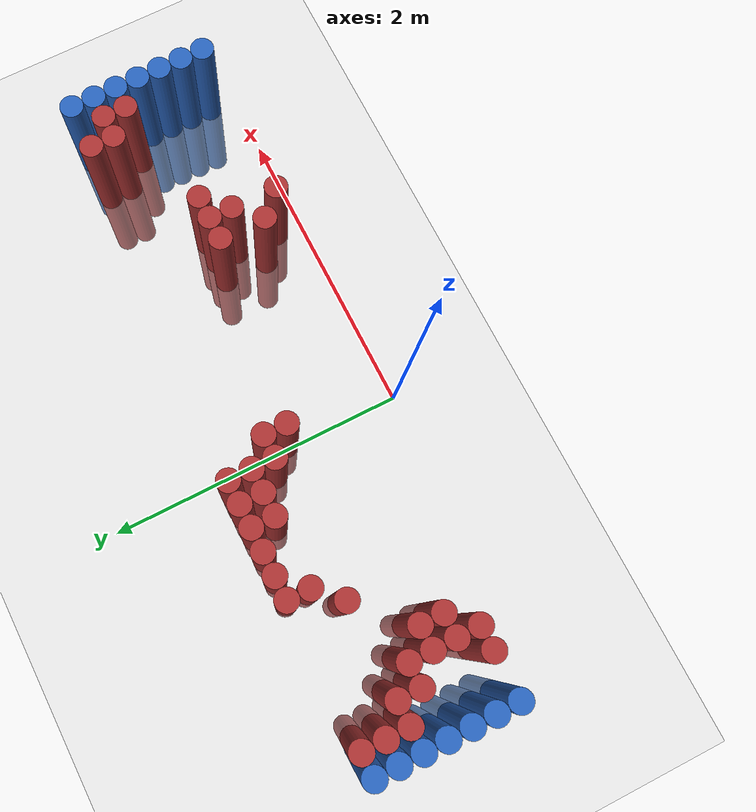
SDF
<sdf version="1.6">
 <world name="default">
  <model name="ground_plane">
   <static>1</static>
   <link name="link">
    <collision name="collision">
     <geometry><plane><normal>0 0 1</normal><size>100 100</size></plane></geometry>
     <surface><friction><ode><mu>100</mu><mu2>50</mu2></ode></friction></surface>
    </collision>
    <visual name="visual">
     <cast_shadows>0</cast_shadows>
     <geometry><plane><normal>0 0 1</normal><size>100 100</size></plane></geometry>
     <material>
      <script><uri>file://media/materials/scripts/gazebo.material</uri><name>Gazebo/Grey</name></script>
     </material>
    </visual>
   </link>
  </model>
  <model name="unit_cylinder_97">
   <static>1</static>
   <pose>-1.925000 0.325000 0.000000 0.000000 0.000000 0.000000</pose>
   <link name="link">
    <inertial>
     <mass>1</mass>
     <inertia><ixx>0.145833</ixx><ixy>0</ixy><ixz>0</ixz><iyy>0.145833</iyy><iyz>0</iyz><izz>0.125</izz></inertia>
    </inertial>
    <collision name="collision">
     <geometry><cylinder><radius>0.075000</radius><length>1.5</length></cylinder></geometry>
    </collision>
    <visual name="visual">
     <geometry><cylinder><radius>0.075000</radius><length>1.5</length></cylinder></geometry>
     <material>
      <ambient>0.152000 0.379000 0.720000 1</ambient>
      <diffuse>0.152000 0.379000 0.720000 1</diffuse>
     </material>
     <material>
      <script><name>Gazebo/Grey</name><uri>file://media/materials/scripts/gazebo.material</uri></script>
     </material>
    </visual>
   </link>
  </model>
  <model name="unit_cylinder_98">
   <static>1</static>
   <pose>-1.925000 0.475000 0.000000 0.000000 0.000000 0.000000</pose>
   <link name="link">
    <inertial>
     <mass>1</mass>
     <inertia><ixx>0.145833</ixx><ixy>0</ixy><ixz>0</ixz><iyy>0.145833</iyy><iyz>0</iyz><izz>0.125</izz></inertia>
    </inertial>
    <collision name="collision">
     <geometry><cylinder><radius>0.075000</radius><length>1.5</length></cylinder></geometry>
    </collision>
    <visual name="visual">
     <geometry><cylinder><radius>0.075000</radius><length>1.5</length></cylinder></geometry>
     <material>
      <ambient>0.152000 0.379000 0.720000 1</ambient>
      <diffuse>0.152000 0.379000 0.720000 1</diffuse>
     </material>
     <material>
      <script><name>Gazebo/Grey</name><uri>file://media/materials/scripts/gazebo.material</uri></script>
     </material>
    </visual>
   </link>
  </model>
  <model name="unit_cylinder_99">
   <static>1</static>
   <pose>-1.925000 0.625000 0.000000 0.000000 0.000000 0.000000</pose>
   <link name="link">
    <inertial>
     <mass>1</mass>
     <inertia><ixx>0.145833</ixx><ixy>0</ixy><ixz>0</ixz><iyy>0.145833</iyy><iyz>0</iyz><izz>0.125</izz></inertia>
    </inertial>
    <collision name="collision">
     <geometry><cylinder><radius>0.075000</radius><length>1.5</length></cylinder></geometry>
    </collision>
    <visual name="visual">
     <geometry><cylinder><radius>0.075000</radius><length>1.5</length></cylinder></geometry>
     <material>
      <ambient>0.152000 0.379000 0.720000 1</ambient>
      <diffuse>0.152000 0.379000 0.720000 1</diffuse>
     </material>
     <material>
      <script><name>Gazebo/Grey</name><uri>file://media/materials/scripts/gazebo.material</uri></script>
     </material>
    </visual>
   </link>
  </model>
  <model name="unit_cylinder_100">
   <static>1</static>
   <pose>-1.925000 0.775000 0.000000 0.000000 0.000000 0.000000</pose>
   <link name="link">
    <inertial>
     <mass>1</mass>
     <inertia><ixx>0.145833</ixx><ixy>0</ixy><ixz>0</ixz><iyy>0.145833</iyy><iyz>0</iyz><izz>0.125</izz></inertia>
    </inertial>
    <collision name="collision">
     <geometry><cylinder><radius>0.075000</radius><length>1.5</length></cylinder></geometry>
    </collision>
    <visual name="visual">
     <geometry><cylinder><radius>0.075000</radius><length>1.5</length></cylinder></geometry>
     <material>
      <ambient>0.152000 0.379000 0.720000 1</ambient>
      <diffuse>0.152000 0.379000 0.720000 1</diffuse>
     </material>
     <material>
      <script><name>Gazebo/Grey</name><uri>file://media/materials/scripts/gazebo.material</uri></script>
     </material>
    </visual>
   </link>
  </model>
  <model name="unit_cylinder_101">
   <static>1</static>
   <pose>-1.925000 0.925000 0.000000 0.000000 0.000000 0.000000</pose>
   <link name="link">
    <inertial>
     <mass>1</mass>
     <inertia><ixx>0.145833</ixx><ixy>0</ixy><ixz>0</ixz><iyy>0.145833</iyy><iyz>0</iyz><izz>0.125</izz></inertia>
    </inertial>
    <collision name="collision">
     <geometry><cylinder><radius>0.075000</radius><length>1.5</length></cylinder></geometry>
    </collision>
    <visual name="visual">
     <geometry><cylinder><radius>0.075000</radius><length>1.5</length></cylinder></geometry>
     <material>
      <ambient>0.152000 0.379000 0.720000 1</ambient>
      <diffuse>0.152000 0.379000 0.720000 1</diffuse>
     </material>
     <material>
      <script><name>Gazebo/Grey</name><uri>file://media/materials/scripts/gazebo.material</uri></script>
     </material>
    </visual>
   </link>
  </model>
  <model name="unit_cylinder_102">
   <static>1</static>
   <pose>-1.925000 1.075000 0.000000 0.000000 0.000000 0.000000</pose>
   <link name="link">
    <inertial>
     <mass>1</mass>
     <inertia><ixx>0.145833</ixx><ixy>0</ixy><ixz>0</ixz><iyy>0.145833</iyy><iyz>0</iyz><izz>0.125</izz></inertia>
    </inertial>
    <collision name="collision">
     <geometry><cylinder><radius>0.075000</radius><length>1.5</length></cylinder></geometry>
    </collision>
    <visual name="visual">
     <geometry><cylinder><radius>0.075000</radius><length>1.5</length></cylinder></geometry>
     <material>
      <ambient>0.152000 0.379000 0.720000 1</ambient>
      <diffuse>0.152000 0.379000 0.720000 1</diffuse>
     </material>
     <material>
      <script><name>Gazebo/Grey</name><uri>file://media/materials/scripts/gazebo.material</uri></script>
     </material>
    </visual>
   </link>
  </model>
  <model name="unit_cylinder_103">
   <static>1</static>
   <pose>-1.925000 1.225000 0.000000 0.000000 0.000000 0.000000</pose>
   <link name="link">
    <inertial>
     <mass>1</mass>
     <inertia><ixx>0.145833</ixx><ixy>0</ixy><ixz>0</ixz><iyy>0.145833</iyy><iyz>0</iyz><izz>0.125</izz></inertia>
    </inertial>
    <collision name="collision">
     <geometry><cylinder><radius>0.075000</radius><length>1.5</length></cylinder></geometry>
    </collision>
    <visual name="visual">
     <geometry><cylinder><radius>0.075000</radius><length>1.5</length></cylinder></geometry>
     <material>
      <ambient>0.152000 0.379000 0.720000 1</ambient>
      <diffuse>0.152000 0.379000 0.720000 1</diffuse>
     </material>
     <material>
      <script><name>Gazebo/Grey</name><uri>file://media/materials/scripts/gazebo.material</uri></script>
     </material>
    </visual>
   </link>
  </model>
  <model name="unit_cylinder_127">
   <static>1</static>
   <pose>-1.775000 0.925000 0.000000 0.000000 0.000000 0.000000</pose>
   <link name="link">
    <inertial>
     <mass>1</mass>
     <inertia><ixx>0.145833</ixx><ixy>0</ixy><ixz>0</ixz><iyy>0.145833</iyy><iyz>0</iyz><izz>0.125</izz></inertia>
    </inertial>
    <collision name="collision">
     <geometry><cylinder><radius>0.075000</radius><length>1.5</length></cylinder></geometry>
    </collision>
    <visual name="visual">
     <geometry><cylinder><radius>0.075000</radius><length>1.5</length></cylinder></geometry>
     <material>
      <ambient>0.648000 0.192000 0.192000 1</ambient>
      <diffuse>0.648000 0.192000 0.192000 1</diffuse>
     </material>
     <material>
      <script><name>Gazebo/Grey</name><uri>file://media/materials/scripts/gazebo.material</uri></script>
     </material>
    </visual>
   </link>
  </model>
  <model name="unit_cylinder_128">
   <static>1</static>
   <pose>-1.775000 1.075000 0.000000 0.000000 0.000000 0.000000</pose>
   <link name="link">
    <inertial>
     <mass>1</mass>
     <inertia><ixx>0.145833</ixx><ixy>0</ixy><ixz>0</ixz><iyy>0.145833</iyy><iyz>0</iyz><izz>0.125</izz></inertia>
    </inertial>
    <collision name="collision">
     <geometry><cylinder><radius>0.075000</radius><length>1.5</length></cylinder></geometry>
    </collision>
    <visual name="visual">
     <geometry><cylinder><radius>0.075000</radius><length>1.5</length></cylinder></geometry>
     <material>
      <ambient>0.648000 0.192000 0.192000 1</ambient>
      <diffuse>0.648000 0.192000 0.192000 1</diffuse>
     </material>
     <material>
      <script><name>Gazebo/Grey</name><uri>file://media/materials/scripts/gazebo.material</uri></script>
     </material>
    </visual>
   </link>
  </model>
  <model name="unit_cylinder_129">
   <static>1</static>
   <pose>-1.775000 1.225000 0.000000 0.000000 0.000000 0.000000</pose>
   <link name="link">
    <inertial>
     <mass>1</mass>
     <inertia><ixx>0.145833</ixx><ixy>0</ixy><ixz>0</ixz><iyy>0.145833</iyy><iyz>0</iyz><izz>0.125</izz></inertia>
    </inertial>
    <collision name="collision">
     <geometry><cylinder><radius>0.075000</radius><length>1.5</length></cylinder></geometry>
    </collision>
    <visual name="visual">
     <geometry><cylinder><radius>0.075000</radius><length>1.5</length></cylinder></geometry>
     <material>
      <ambient>0.648000 0.192000 0.192000 1</ambient>
      <diffuse>0.648000 0.192000 0.192000 1</diffuse>
     </material>
     <material>
      <script><name>Gazebo/Grey</name><uri>file://media/materials/scripts/gazebo.material</uri></script>
     </material>
    </visual>
   </link>
  </model>
  <model name="unit_cylinder_150">
   <static>1</static>
   <pose>-1.625000 0.325000 0.000000 0.000000 0.000000 0.000000</pose>
   <link name="link">
    <inertial>
     <mass>1</mass>
     <inertia><ixx>0.145833</ixx><ixy>0</ixy><ixz>0</ixz><iyy>0.145833</iyy><iyz>0</iyz><izz>0.125</izz></inertia>
    </inertial>
    <collision name="collision">
     <geometry><cylinder><radius>0.075000</radius><length>1.5</length></cylinder></geometry>
    </collision>
    <visual name="visual">
     <geometry><cylinder><radius>0.075000</radius><length>1.5</length></cylinder></geometry>
     <material>
      <ambient>0.648000 0.192000 0.192000 1</ambient>
      <diffuse>0.648000 0.192000 0.192000 1</diffuse>
     </material>
     <material>
      <script><name>Gazebo/Grey</name><uri>file://media/materials/scripts/gazebo.material</uri></script>
     </material>
    </visual>
   </link>
  </model>
  <model name="unit_cylinder_151">
   <static>1</static>
   <pose>-1.625000 0.775000 0.000000 0.000000 0.000000 0.000000</pose>
   <link name="link">
    <inertial>
     <mass>1</mass>
     <inertia><ixx>0.145833</ixx><ixy>0</ixy><ixz>0</ixz><iyy>0.145833</iyy><iyz>0</iyz><izz>0.125</izz></inertia>
    </inertial>
    <collision name="collision">
     <geometry><cylinder><radius>0.075000</radius><length>1.5</length></cylinder></geometry>
    </collision>
    <visual name="visual">
     <geometry><cylinder><radius>0.075000</radius><length>1.5</length></cylinder></geometry>
     <material>
      <ambient>0.648000 0.192000 0.192000 1</ambient>
      <diffuse>0.648000 0.192000 0.192000 1</diffuse>
     </material>
     <material>
      <script><name>Gazebo/Grey</name><uri>file://media/materials/scripts/gazebo.material</uri></script>
     </material>
    </visual>
   </link>
  </model>
  <model name="unit_cylinder_152">
   <static>1</static>
   <pose>-1.625000 0.925000 0.000000 0.000000 0.000000 0.000000</pose>
   <link name="link">
    <inertial>
     <mass>1</mass>
     <inertia><ixx>0.145833</ixx><ixy>0</ixy><ixz>0</ixz><iyy>0.145833</iyy><iyz>0</iyz><izz>0.125</izz></inertia>
    </inertial>
    <collision name="collision">
     <geometry><cylinder><radius>0.075000</radius><length>1.5</length></cylinder></geometry>
    </collision>
    <visual name="visual">
     <geometry><cylinder><radius>0.075000</radius><length>1.5</length></cylinder></geometry>
     <material>
      <ambient>0.648000 0.192000 0.192000 1</ambient>
      <diffuse>0.648000 0.192000 0.192000 1</diffuse>
     </material>
     <material>
      <script><name>Gazebo/Grey</name><uri>file://media/materials/scripts/gazebo.material</uri></script>
     </material>
    </visual>
   </link>
  </model>
  <model name="unit_cylinder_156">
   <static>1</static>
   <pose>-1.475000 0.325000 0.000000 0.000000 0.000000 0.000000</pose>
   <link name="link">
    <inertial>
     <mass>1</mass>
     <inertia><ixx>0.145833</ixx><ixy>0</ixy><ixz>0</ixz><iyy>0.145833</iyy><iyz>0</iyz><izz>0.125</izz></inertia>
    </inertial>
    <collision name="collision">
     <geometry><cylinder><radius>0.075000</radius><length>1.5</length></cylinder></geometry>
    </collision>
    <visual name="visual">
     <geometry><cylinder><radius>0.075000</radius><length>1.5</length></cylinder></geometry>
     <material>
      <ambient>0.648000 0.192000 0.192000 1</ambient>
      <diffuse>0.648000 0.192000 0.192000 1</diffuse>
     </material>
     <material>
      <script><name>Gazebo/Grey</name><uri>file://media/materials/scripts/gazebo.material</uri></script>
     </material>
    </visual>
   </link>
  </model>
  <model name="unit_cylinder_157">
   <static>1</static>
   <pose>-1.475000 0.475000 0.000000 0.000000 0.000000 0.000000</pose>
   <link name="link">
    <inertial>
     <mass>1</mass>
     <inertia><ixx>0.145833</ixx><ixy>0</ixy><ixz>0</ixz><iyy>0.145833</iyy><iyz>0</iyz><izz>0.125</izz></inertia>
    </inertial>
    <collision name="collision">
     <geometry><cylinder><radius>0.075000</radius><length>1.5</length></cylinder></geometry>
    </collision>
    <visual name="visual">
     <geometry><cylinder><radius>0.075000</radius><length>1.5</length></cylinder></geometry>
     <material>
      <ambient>0.648000 0.192000 0.192000 1</ambient>
      <diffuse>0.648000 0.192000 0.192000 1</diffuse>
     </material>
     <material>
      <script><name>Gazebo/Grey</name><uri>file://media/materials/scripts/gazebo.material</uri></script>
     </material>
    </visual>
   </link>
  </model>
  <model name="unit_cylinder_158">
   <static>1</static>
   <pose>-1.475000 0.625000 0.000000 0.000000 0.000000 0.000000</pose>
   <link name="link">
    <inertial>
     <mass>1</mass>
     <inertia><ixx>0.145833</ixx><ixy>0</ixy><ixz>0</ixz><iyy>0.145833</iyy><iyz>0</iyz><izz>0.125</izz></inertia>
    </inertial>
    <collision name="collision">
     <geometry><cylinder><radius>0.075000</radius><length>1.5</length></cylinder></geometry>
    </collision>
    <visual name="visual">
     <geometry><cylinder><radius>0.075000</radius><length>1.5</length></cylinder></geometry>
     <material>
      <ambient>0.648000 0.192000 0.192000 1</ambient>
      <diffuse>0.648000 0.192000 0.192000 1</diffuse>
     </material>
     <material>
      <script><name>Gazebo/Grey</name><uri>file://media/materials/scripts/gazebo.material</uri></script>
     </material>
    </visual>
   </link>
  </model>
  <model name="unit_cylinder_159">
   <static>1</static>
   <pose>-1.475000 0.775000 0.000000 0.000000 0.000000 0.000000</pose>
   <link name="link">
    <inertial>
     <mass>1</mass>
     <inertia><ixx>0.145833</ixx><ixy>0</ixy><ixz>0</ixz><iyy>0.145833</iyy><iyz>0</iyz><izz>0.125</izz></inertia>
    </inertial>
    <collision name="collision">
     <geometry><cylinder><radius>0.075000</radius><length>1.5</length></cylinder></geometry>
    </collision>
    <visual name="visual">
     <geometry><cylinder><radius>0.075000</radius><length>1.5</length></cylinder></geometry>
     <material>
      <ambient>0.648000 0.192000 0.192000 1</ambient>
      <diffuse>0.648000 0.192000 0.192000 1</diffuse>
     </material>
     <material>
      <script><name>Gazebo/Grey</name><uri>file://media/materials/scripts/gazebo.material</uri></script>
     </material>
    </visual>
   </link>
  </model>
  <model name="unit_cylinder_162">
   <static>1</static>
   <pose>-1.325000 0.475000 0.000000 0.000000 0.000000 0.000000</pose>
   <link name="link">
    <inertial>
     <mass>1</mass>
     <inertia><ixx>0.145833</ixx><ixy>0</ixy><ixz>0</ixz><iyy>0.145833</iyy><iyz>0</iyz><izz>0.125</izz></inertia>
    </inertial>
    <collision name="collision">
     <geometry><cylinder><radius>0.075000</radius><length>1.5</length></cylinder></geometry>
    </collision>
    <visual name="visual">
     <geometry><cylinder><radius>0.075000</radius><length>1.5</length></cylinder></geometry>
     <material>
      <ambient>0.648000 0.192000 0.192000 1</ambient>
      <diffuse>0.648000 0.192000 0.192000 1</diffuse>
     </material>
     <material>
      <script><name>Gazebo/Grey</name><uri>file://media/materials/scripts/gazebo.material</uri></script>
     </material>
    </visual>
   </link>
  </model>
  <model name="unit_cylinder_163">
   <static>1</static>
   <pose>-1.325000 0.625000 0.000000 0.000000 0.000000 0.000000</pose>
   <link name="link">
    <inertial>
     <mass>1</mass>
     <inertia><ixx>0.145833</ixx><ixy>0</ixy><ixz>0</ixz><iyy>0.145833</iyy><iyz>0</iyz><izz>0.125</izz></inertia>
    </inertial>
    <collision name="collision">
     <geometry><cylinder><radius>0.075000</radius><length>1.5</length></cylinder></geometry>
    </collision>
    <visual name="visual">
     <geometry><cylinder><radius>0.075000</radius><length>1.5</length></cylinder></geometry>
     <material>
      <ambient>0.648000 0.192000 0.192000 1</ambient>
      <diffuse>0.648000 0.192000 0.192000 1</diffuse>
     </material>
     <material>
      <script><name>Gazebo/Grey</name><uri>file://media/materials/scripts/gazebo.material</uri></script>
     </material>
    </visual>
   </link>
  </model>
  <model name="unit_cylinder_179">
   <static>1</static>
   <pose>-1.025000 0.925000 0.000000 0.000000 0.000000 0.000000</pose>
   <link name="link">
    <inertial>
     <mass>1</mass>
     <inertia><ixx>0.145833</ixx><ixy>0</ixy><ixz>0</ixz><iyy>0.145833</iyy><iyz>0</iyz><izz>0.125</izz></inertia>
    </inertial>
    <collision name="collision">
     <geometry><cylinder><radius>0.075000</radius><length>1.5</length></cylinder></geometry>
    </collision>
    <visual name="visual">
     <geometry><cylinder><radius>0.075000</radius><length>1.5</length></cylinder></geometry>
     <material>
      <ambient>0.648000 0.192000 0.192000 1</ambient>
      <diffuse>0.648000 0.192000 0.192000 1</diffuse>
     </material>
     <material>
      <script><name>Gazebo/Grey</name><uri>file://media/materials/scripts/gazebo.material</uri></script>
     </material>
    </visual>
   </link>
  </model>
  <model name="unit_cylinder_181">
   <static>1</static>
   <pose>-0.875000 1.075000 0.000000 0.000000 0.000000 0.000000</pose>
   <link name="link">
    <inertial>
     <mass>1</mass>
     <inertia><ixx>0.145833</ixx><ixy>0</ixy><ixz>0</ixz><iyy>0.145833</iyy><iyz>0</iyz><izz>0.125</izz></inertia>
    </inertial>
    <collision name="collision">
     <geometry><cylinder><radius>0.075000</radius><length>1.5</length></cylinder></geometry>
    </collision>
    <visual name="visual">
     <geometry><cylinder><radius>0.075000</radius><length>1.5</length></cylinder></geometry>
     <material>
      <ambient>0.648000 0.192000 0.192000 1</ambient>
      <diffuse>0.648000 0.192000 0.192000 1</diffuse>
     </material>
     <material>
      <script><name>Gazebo/Grey</name><uri>file://media/materials/scripts/gazebo.material</uri></script>
     </material>
    </visual>
   </link>
  </model>
  <model name="unit_cylinder_182">
   <static>1</static>
   <pose>-0.875000 1.225000 0.000000 0.000000 0.000000 0.000000</pose>
   <link name="link">
    <inertial>
     <mass>1</mass>
     <inertia><ixx>0.145833</ixx><ixy>0</ixy><ixz>0</ixz><iyy>0.145833</iyy><iyz>0</iyz><izz>0.125</izz></inertia>
    </inertial>
    <collision name="collision">
     <geometry><cylinder><radius>0.075000</radius><length>1.5</length></cylinder></geometry>
    </collision>
    <visual name="visual">
     <geometry><cylinder><radius>0.075000</radius><length>1.5</length></cylinder></geometry>
     <material>
      <ambient>0.648000 0.192000 0.192000 1</ambient>
      <diffuse>0.648000 0.192000 0.192000 1</diffuse>
     </material>
     <material>
      <script><name>Gazebo/Grey</name><uri>file://media/materials/scripts/gazebo.material</uri></script>
     </material>
    </visual>
   </link>
  </model>
  <model name="unit_cylinder_183">
   <static>1</static>
   <pose>-0.725000 1.225000 0.000000 0.000000 0.000000 0.000000</pose>
   <link name="link">
    <inertial>
     <mass>1</mass>
     <inertia><ixx>0.145833</ixx><ixy>0</ixy><ixz>0</ixz><iyy>0.145833</iyy><iyz>0</iyz><izz>0.125</izz></inertia>
    </inertial>
    <collision name="collision">
     <geometry><cylinder><radius>0.075000</radius><length>1.5</length></cylinder></geometry>
    </collision>
    <visual name="visual">
     <geometry><cylinder><radius>0.075000</radius><length>1.5</length></cylinder></geometry>
     <material>
      <ambient>0.648000 0.192000 0.192000 1</ambient>
      <diffuse>0.648000 0.192000 0.192000 1</diffuse>
     </material>
     <material>
      <script><name>Gazebo/Grey</name><uri>file://media/materials/scripts/gazebo.material</uri></script>
     </material>
    </visual>
   </link>
  </model>
  <model name="unit_cylinder_185">
   <static>1</static>
   <pose>-0.575000 1.225000 0.000000 0.000000 0.000000 0.000000</pose>
   <link name="link">
    <inertial>
     <mass>1</mass>
     <inertia><ixx>0.145833</ixx><ixy>0</ixy><ixz>0</ixz><iyy>0.145833</iyy><iyz>0</iyz><izz>0.125</izz></inertia>
    </inertial>
    <collision name="collision">
     <geometry><cylinder><radius>0.075000</radius><length>1.5</length></cylinder></geometry>
    </collision>
    <visual name="visual">
     <geometry><cylinder><radius>0.075000</radius><length>1.5</length></cylinder></geometry>
     <material>
      <ambient>0.648000 0.192000 0.192000 1</ambient>
      <diffuse>0.648000 0.192000 0.192000 1</diffuse>
     </material>
     <material>
      <script><name>Gazebo/Grey</name><uri>file://media/materials/scripts/gazebo.material</uri></script>
     </material>
    </visual>
   </link>
  </model>
  <model name="unit_cylinder_192">
   <static>1</static>
   <pose>-0.425000 1.075000 0.000000 0.000000 0.000000 0.000000</pose>
   <link name="link">
    <inertial>
     <mass>1</mass>
     <inertia><ixx>0.145833</ixx><ixy>0</ixy><ixz>0</ixz><iyy>0.145833</iyy><iyz>0</iyz><izz>0.125</izz></inertia>
    </inertial>
    <collision name="collision">
     <geometry><cylinder><radius>0.075000</radius><length>1.5</length></cylinder></geometry>
    </collision>
    <visual name="visual">
     <geometry><cylinder><radius>0.075000</radius><length>1.5</length></cylinder></geometry>
     <material>
      <ambient>0.648000 0.192000 0.192000 1</ambient>
      <diffuse>0.648000 0.192000 0.192000 1</diffuse>
     </material>
     <material>
      <script><name>Gazebo/Grey</name><uri>file://media/materials/scripts/gazebo.material</uri></script>
     </material>
    </visual>
   </link>
  </model>
  <model name="unit_cylinder_193">
   <static>1</static>
   <pose>-0.425000 1.225000 0.000000 0.000000 0.000000 0.000000</pose>
   <link name="link">
    <inertial>
     <mass>1</mass>
     <inertia><ixx>0.145833</ixx><ixy>0</ixy><ixz>0</ixz><iyy>0.145833</iyy><iyz>0</iyz><izz>0.125</izz></inertia>
    </inertial>
    <collision name="collision">
     <geometry><cylinder><radius>0.075000</radius><length>1.5</length></cylinder></geometry>
    </collision>
    <visual name="visual">
     <geometry><cylinder><radius>0.075000</radius><length>1.5</length></cylinder></geometry>
     <material>
      <ambient>0.648000 0.192000 0.192000 1</ambient>
      <diffuse>0.648000 0.192000 0.192000 1</diffuse>
     </material>
     <material>
      <script><name>Gazebo/Grey</name><uri>file://media/materials/scripts/gazebo.material</uri></script>
     </material>
    </visual>
   </link>
  </model>
  <model name="unit_cylinder_202">
   <static>1</static>
   <pose>-0.275000 1.075000 0.000000 0.000000 0.000000 0.000000</pose>
   <link name="link">
    <inertial>
     <mass>1</mass>
     <inertia><ixx>0.145833</ixx><ixy>0</ixy><ixz>0</ixz><iyy>0.145833</iyy><iyz>0</iyz><izz>0.125</izz></inertia>
    </inertial>
    <collision name="collision">
     <geometry><cylinder><radius>0.075000</radius><length>1.5</length></cylinder></geometry>
    </collision>
    <visual name="visual">
     <geometry><cylinder><radius>0.075000</radius><length>1.5</length></cylinder></geometry>
     <material>
      <ambient>0.648000 0.192000 0.192000 1</ambient>
      <diffuse>0.648000 0.192000 0.192000 1</diffuse>
     </material>
     <material>
      <script><name>Gazebo/Grey</name><uri>file://media/materials/scripts/gazebo.material</uri></script>
     </material>
    </visual>
   </link>
  </model>
  <model name="unit_cylinder_203">
   <static>1</static>
   <pose>-0.275000 1.225000 0.000000 0.000000 0.000000 0.000000</pose>
   <link name="link">
    <inertial>
     <mass>1</mass>
     <inertia><ixx>0.145833</ixx><ixy>0</ixy><ixz>0</ixz><iyy>0.145833</iyy><iyz>0</iyz><izz>0.125</izz></inertia>
    </inertial>
    <collision name="collision">
     <geometry><cylinder><radius>0.075000</radius><length>1.5</length></cylinder></geometry>
    </collision>
    <visual name="visual">
     <geometry><cylinder><radius>0.075000</radius><length>1.5</length></cylinder></geometry>
     <material>
      <ambient>0.648000 0.192000 0.192000 1</ambient>
      <diffuse>0.648000 0.192000 0.192000 1</diffuse>
     </material>
     <material>
      <script><name>Gazebo/Grey</name><uri>file://media/materials/scripts/gazebo.material</uri></script>
     </material>
    </visual>
   </link>
  </model>
  <model name="unit_cylinder_211">
   <static>1</static>
   <pose>-0.125000 0.925000 0.000000 0.000000 0.000000 0.000000</pose>
   <link name="link">
    <inertial>
     <mass>1</mass>
     <inertia><ixx>0.145833</ixx><ixy>0</ixy><ixz>0</ixz><iyy>0.145833</iyy><iyz>0</iyz><izz>0.125</izz></inertia>
    </inertial>
    <collision name="collision">
     <geometry><cylinder><radius>0.075000</radius><length>1.5</length></cylinder></geometry>
    </collision>
    <visual name="visual">
     <geometry><cylinder><radius>0.075000</radius><length>1.5</length></cylinder></geometry>
     <material>
      <ambient>0.648000 0.192000 0.192000 1</ambient>
      <diffuse>0.648000 0.192000 0.192000 1</diffuse>
     </material>
     <material>
      <script><name>Gazebo/Grey</name><uri>file://media/materials/scripts/gazebo.material</uri></script>
     </material>
    </visual>
   </link>
  </model>
  <model name="unit_cylinder_212">
   <static>1</static>
   <pose>-0.125000 1.075000 0.000000 0.000000 0.000000 0.000000</pose>
   <link name="link">
    <inertial>
     <mass>1</mass>
     <inertia><ixx>0.145833</ixx><ixy>0</ixy><ixz>0</ixz><iyy>0.145833</iyy><iyz>0</iyz><izz>0.125</izz></inertia>
    </inertial>
    <collision name="collision">
     <geometry><cylinder><radius>0.075000</radius><length>1.5</length></cylinder></geometry>
    </collision>
    <visual name="visual">
     <geometry><cylinder><radius>0.075000</radius><length>1.5</length></cylinder></geometry>
     <material>
      <ambient>0.648000 0.192000 0.192000 1</ambient>
      <diffuse>0.648000 0.192000 0.192000 1</diffuse>
     </material>
     <material>
      <script><name>Gazebo/Grey</name><uri>file://media/materials/scripts/gazebo.material</uri></script>
     </material>
    </visual>
   </link>
  </model>
  <model name="unit_cylinder_213">
   <static>1</static>
   <pose>-0.125000 1.225000 0.000000 0.000000 0.000000 0.000000</pose>
   <link name="link">
    <inertial>
     <mass>1</mass>
     <inertia><ixx>0.145833</ixx><ixy>0</ixy><ixz>0</ixz><iyy>0.145833</iyy><iyz>0</iyz><izz>0.125</izz></inertia>
    </inertial>
    <collision name="collision">
     <geometry><cylinder><radius>0.075000</radius><length>1.5</length></cylinder></geometry>
    </collision>
    <visual name="visual">
     <geometry><cylinder><radius>0.075000</radius><length>1.5</length></cylinder></geometry>
     <material>
      <ambient>0.648000 0.192000 0.192000 1</ambient>
      <diffuse>0.648000 0.192000 0.192000 1</diffuse>
     </material>
     <material>
      <script><name>Gazebo/Grey</name><uri>file://media/materials/scripts/gazebo.material</uri></script>
     </material>
    </visual>
   </link>
  </model>
  <model name="unit_cylinder_221">
   <static>1</static>
   <pose>0.025000 0.775000 0.000000 0.000000 0.000000 0.000000</pose>
   <link name="link">
    <inertial>
     <mass>1</mass>
     <inertia><ixx>0.145833</ixx><ixy>0</ixy><ixz>0</ixz><iyy>0.145833</iyy><iyz>0</iyz><izz>0.125</izz></inertia>
    </inertial>
    <collision name="collision">
     <geometry><cylinder><radius>0.075000</radius><length>1.5</length></cylinder></geometry>
    </collision>
    <visual name="visual">
     <geometry><cylinder><radius>0.075000</radius><length>1.5</length></cylinder></geometry>
     <material>
      <ambient>0.648000 0.192000 0.192000 1</ambient>
      <diffuse>0.648000 0.192000 0.192000 1</diffuse>
     </material>
     <material>
      <script><name>Gazebo/Grey</name><uri>file://media/materials/scripts/gazebo.material</uri></script>
     </material>
    </visual>
   </link>
  </model>
  <model name="unit_cylinder_222">
   <static>1</static>
   <pose>0.025000 0.925000 0.000000 0.000000 0.000000 0.000000</pose>
   <link name="link">
    <inertial>
     <mass>1</mass>
     <inertia><ixx>0.145833</ixx><ixy>0</ixy><ixz>0</ixz><iyy>0.145833</iyy><iyz>0</iyz><izz>0.125</izz></inertia>
    </inertial>
    <collision name="collision">
     <geometry><cylinder><radius>0.075000</radius><length>1.5</length></cylinder></geometry>
    </collision>
    <visual name="visual">
     <geometry><cylinder><radius>0.075000</radius><length>1.5</length></cylinder></geometry>
     <material>
      <ambient>0.648000 0.192000 0.192000 1</ambient>
      <diffuse>0.648000 0.192000 0.192000 1</diffuse>
     </material>
     <material>
      <script><name>Gazebo/Grey</name><uri>file://media/materials/scripts/gazebo.material</uri></script>
     </material>
    </visual>
   </link>
  </model>
  <model name="unit_cylinder_245">
   <static>1</static>
   <pose>1.225000 0.325000 0.000000 0.000000 0.000000 0.000000</pose>
   <link name="link">
    <inertial>
     <mass>1</mass>
     <inertia><ixx>0.145833</ixx><ixy>0</ixy><ixz>0</ixz><iyy>0.145833</iyy><iyz>0</iyz><izz>0.125</izz></inertia>
    </inertial>
    <collision name="collision">
     <geometry><cylinder><radius>0.075000</radius><length>1.5</length></cylinder></geometry>
    </collision>
    <visual name="visual">
     <geometry><cylinder><radius>0.075000</radius><length>1.5</length></cylinder></geometry>
     <material>
      <ambient>0.648000 0.192000 0.192000 1</ambient>
      <diffuse>0.648000 0.192000 0.192000 1</diffuse>
     </material>
     <material>
      <script><name>Gazebo/Grey</name><uri>file://media/materials/scripts/gazebo.material</uri></script>
     </material>
    </visual>
   </link>
  </model>
  <model name="unit_cylinder_246">
   <static>1</static>
   <pose>1.225000 0.625000 0.000000 0.000000 0.000000 0.000000</pose>
   <link name="link">
    <inertial>
     <mass>1</mass>
     <inertia><ixx>0.145833</ixx><ixy>0</ixy><ixz>0</ixz><iyy>0.145833</iyy><iyz>0</iyz><izz>0.125</izz></inertia>
    </inertial>
    <collision name="collision">
     <geometry><cylinder><radius>0.075000</radius><length>1.5</length></cylinder></geometry>
    </collision>
    <visual name="visual">
     <geometry><cylinder><radius>0.075000</radius><length>1.5</length></cylinder></geometry>
     <material>
      <ambient>0.648000 0.192000 0.192000 1</ambient>
      <diffuse>0.648000 0.192000 0.192000 1</diffuse>
     </material>
     <material>
      <script><name>Gazebo/Grey</name><uri>file://media/materials/scripts/gazebo.material</uri></script>
     </material>
    </visual>
   </link>
  </model>
  <model name="unit_cylinder_247">
   <static>1</static>
   <pose>1.375000 0.175000 0.000000 0.000000 0.000000 0.000000</pose>
   <link name="link">
    <inertial>
     <mass>1</mass>
     <inertia><ixx>0.145833</ixx><ixy>0</ixy><ixz>0</ixz><iyy>0.145833</iyy><iyz>0</iyz><izz>0.125</izz></inertia>
    </inertial>
    <collision name="collision">
     <geometry><cylinder><radius>0.075000</radius><length>1.5</length></cylinder></geometry>
    </collision>
    <visual name="visual">
     <geometry><cylinder><radius>0.075000</radius><length>1.5</length></cylinder></geometry>
     <material>
      <ambient>0.648000 0.192000 0.192000 1</ambient>
      <diffuse>0.648000 0.192000 0.192000 1</diffuse>
     </material>
     <material>
      <script><name>Gazebo/Grey</name><uri>file://media/materials/scripts/gazebo.material</uri></script>
     </material>
    </visual>
   </link>
  </model>
  <model name="unit_cylinder_248">
   <static>1</static>
   <pose>1.375000 0.475000 0.000000 0.000000 0.000000 0.000000</pose>
   <link name="link">
    <inertial>
     <mass>1</mass>
     <inertia><ixx>0.145833</ixx><ixy>0</ixy><ixz>0</ixz><iyy>0.145833</iyy><iyz>0</iyz><izz>0.125</izz></inertia>
    </inertial>
    <collision name="collision">
     <geometry><cylinder><radius>0.075000</radius><length>1.5</length></cylinder></geometry>
    </collision>
    <visual name="visual">
     <geometry><cylinder><radius>0.075000</radius><length>1.5</length></cylinder></geometry>
     <material>
      <ambient>0.648000 0.192000 0.192000 1</ambient>
      <diffuse>0.648000 0.192000 0.192000 1</diffuse>
     </material>
     <material>
      <script><name>Gazebo/Grey</name><uri>file://media/materials/scripts/gazebo.material</uri></script>
     </material>
    </visual>
   </link>
  </model>
  <model name="unit_cylinder_249">
   <static>1</static>
   <pose>1.375000 0.625000 0.000000 0.000000 0.000000 0.000000</pose>
   <link name="link">
    <inertial>
     <mass>1</mass>
     <inertia><ixx>0.145833</ixx><ixy>0</ixy><ixz>0</ixz><iyy>0.145833</iyy><iyz>0</iyz><izz>0.125</izz></inertia>
    </inertial>
    <collision name="collision">
     <geometry><cylinder><radius>0.075000</radius><length>1.5</length></cylinder></geometry>
    </collision>
    <visual name="visual">
     <geometry><cylinder><radius>0.075000</radius><length>1.5</length></cylinder></geometry>
     <material>
      <ambient>0.648000 0.192000 0.192000 1</ambient>
      <diffuse>0.648000 0.192000 0.192000 1</diffuse>
     </material>
     <material>
      <script><name>Gazebo/Grey</name><uri>file://media/materials/scripts/gazebo.material</uri></script>
     </material>
    </visual>
   </link>
  </model>
  <model name="unit_cylinder_250">
   <static>1</static>
   <pose>1.525000 0.625000 0.000000 0.000000 0.000000 0.000000</pose>
   <link name="link">
    <inertial>
     <mass>1</mass>
     <inertia><ixx>0.145833</ixx><ixy>0</ixy><ixz>0</ixz><iyy>0.145833</iyy><iyz>0</iyz><izz>0.125</izz></inertia>
    </inertial>
    <collision name="collision">
     <geometry><cylinder><radius>0.075000</radius><length>1.5</length></cylinder></geometry>
    </collision>
    <visual name="visual">
     <geometry><cylinder><radius>0.075000</radius><length>1.5</length></cylinder></geometry>
     <material>
      <ambient>0.648000 0.192000 0.192000 1</ambient>
      <diffuse>0.648000 0.192000 0.192000 1</diffuse>
     </material>
     <material>
      <script><name>Gazebo/Grey</name><uri>file://media/materials/scripts/gazebo.material</uri></script>
     </material>
    </visual>
   </link>
  </model>
  <model name="unit_cylinder_252">
   <static>1</static>
   <pose>2.125000 0.925000 0.000000 0.000000 0.000000 0.000000</pose>
   <link name="link">
    <inertial>
     <mass>1</mass>
     <inertia><ixx>0.145833</ixx><ixy>0</ixy><ixz>0</ixz><iyy>0.145833</iyy><iyz>0</iyz><izz>0.125</izz></inertia>
    </inertial>
    <collision name="collision">
     <geometry><cylinder><radius>0.075000</radius><length>1.5</length></cylinder></geometry>
    </collision>
    <visual name="visual">
     <geometry><cylinder><radius>0.075000</radius><length>1.5</length></cylinder></geometry>
     <material>
      <ambient>0.648000 0.192000 0.192000 1</ambient>
      <diffuse>0.648000 0.192000 0.192000 1</diffuse>
     </material>
     <material>
      <script><name>Gazebo/Grey</name><uri>file://media/materials/scripts/gazebo.material</uri></script>
     </material>
    </visual>
   </link>
  </model>
  <model name="unit_cylinder_253">
   <static>1</static>
   <pose>2.125000 1.075000 0.000000 0.000000 0.000000 0.000000</pose>
   <link name="link">
    <inertial>
     <mass>1</mass>
     <inertia><ixx>0.145833</ixx><ixy>0</ixy><ixz>0</ixz><iyy>0.145833</iyy><iyz>0</iyz><izz>0.125</izz></inertia>
    </inertial>
    <collision name="collision">
     <geometry><cylinder><radius>0.075000</radius><length>1.5</length></cylinder></geometry>
    </collision>
    <visual name="visual">
     <geometry><cylinder><radius>0.075000</radius><length>1.5</length></cylinder></geometry>
     <material>
      <ambient>0.648000 0.192000 0.192000 1</ambient>
      <diffuse>0.648000 0.192000 0.192000 1</diffuse>
     </material>
     <material>
      <script><name>Gazebo/Grey</name><uri>file://media/materials/scripts/gazebo.material</uri></script>
     </material>
    </visual>
   </link>
  </model>
  <model name="unit_cylinder_259">
   <static>1</static>
   <pose>2.275000 0.775000 0.000000 0.000000 0.000000 0.000000</pose>
   <link name="link">
    <inertial>
     <mass>1</mass>
     <inertia><ixx>0.145833</ixx><ixy>0</ixy><ixz>0</ixz><iyy>0.145833</iyy><iyz>0</iyz><izz>0.125</izz></inertia>
    </inertial>
    <collision name="collision">
     <geometry><cylinder><radius>0.075000</radius><length>1.5</length></cylinder></geometry>
    </collision>
    <visual name="visual">
     <geometry><cylinder><radius>0.075000</radius><length>1.5</length></cylinder></geometry>
     <material>
      <ambient>0.648000 0.192000 0.192000 1</ambient>
      <diffuse>0.648000 0.192000 0.192000 1</diffuse>
     </material>
     <material>
      <script><name>Gazebo/Grey</name><uri>file://media/materials/scripts/gazebo.material</uri></script>
     </material>
    </visual>
   </link>
  </model>
  <model name="unit_cylinder_260">
   <static>1</static>
   <pose>2.275000 0.925000 0.000000 0.000000 0.000000 0.000000</pose>
   <link name="link">
    <inertial>
     <mass>1</mass>
     <inertia><ixx>0.145833</ixx><ixy>0</ixy><ixz>0</ixz><iyy>0.145833</iyy><iyz>0</iyz><izz>0.125</izz></inertia>
    </inertial>
    <collision name="collision">
     <geometry><cylinder><radius>0.075000</radius><length>1.5</length></cylinder></geometry>
    </collision>
    <visual name="visual">
     <geometry><cylinder><radius>0.075000</radius><length>1.5</length></cylinder></geometry>
     <material>
      <ambient>0.648000 0.192000 0.192000 1</ambient>
      <diffuse>0.648000 0.192000 0.192000 1</diffuse>
     </material>
     <material>
      <script><name>Gazebo/Grey</name><uri>file://media/materials/scripts/gazebo.material</uri></script>
     </material>
    </visual>
   </link>
  </model>
  <model name="unit_cylinder_270">
   <static>1</static>
   <pose>2.425000 0.175000 0.000000 0.000000 0.000000 0.000000</pose>
   <link name="link">
    <inertial>
     <mass>1</mass>
     <inertia><ixx>0.145833</ixx><ixy>0</ixy><ixz>0</ixz><iyy>0.145833</iyy><iyz>0</iyz><izz>0.125</izz></inertia>
    </inertial>
    <collision name="collision">
     <geometry><cylinder><radius>0.075000</radius><length>1.5</length></cylinder></geometry>
    </collision>
    <visual name="visual">
     <geometry><cylinder><radius>0.075000</radius><length>1.5</length></cylinder></geometry>
     <material>
      <ambient>0.152000 0.379000 0.720000 1</ambient>
      <diffuse>0.152000 0.379000 0.720000 1</diffuse>
     </material>
     <material>
      <script><name>Gazebo/Grey</name><uri>file://media/materials/scripts/gazebo.material</uri></script>
     </material>
    </visual>
   </link>
  </model>
  <model name="unit_cylinder_271">
   <static>1</static>
   <pose>2.425000 0.325000 0.000000 0.000000 0.000000 0.000000</pose>
   <link name="link">
    <inertial>
     <mass>1</mass>
     <inertia><ixx>0.145833</ixx><ixy>0</ixy><ixz>0</ixz><iyy>0.145833</iyy><iyz>0</iyz><izz>0.125</izz></inertia>
    </inertial>
    <collision name="collision">
     <geometry><cylinder><radius>0.075000</radius><length>1.5</length></cylinder></geometry>
    </collision>
    <visual name="visual">
     <geometry><cylinder><radius>0.075000</radius><length>1.5</length></cylinder></geometry>
     <material>
      <ambient>0.152000 0.379000 0.720000 1</ambient>
      <diffuse>0.152000 0.379000 0.720000 1</diffuse>
     </material>
     <material>
      <script><name>Gazebo/Grey</name><uri>file://media/materials/scripts/gazebo.material</uri></script>
     </material>
    </visual>
   </link>
  </model>
  <model name="unit_cylinder_272">
   <static>1</static>
   <pose>2.425000 0.475000 0.000000 0.000000 0.000000 0.000000</pose>
   <link name="link">
    <inertial>
     <mass>1</mass>
     <inertia><ixx>0.145833</ixx><ixy>0</ixy><ixz>0</ixz><iyy>0.145833</iyy><iyz>0</iyz><izz>0.125</izz></inertia>
    </inertial>
    <collision name="collision">
     <geometry><cylinder><radius>0.075000</radius><length>1.5</length></cylinder></geometry>
    </collision>
    <visual name="visual">
     <geometry><cylinder><radius>0.075000</radius><length>1.5</length></cylinder></geometry>
     <material>
      <ambient>0.152000 0.379000 0.720000 1</ambient>
      <diffuse>0.152000 0.379000 0.720000 1</diffuse>
     </material>
     <material>
      <script><name>Gazebo/Grey</name><uri>file://media/materials/scripts/gazebo.material</uri></script>
     </material>
    </visual>
   </link>
  </model>
  <model name="unit_cylinder_273">
   <static>1</static>
   <pose>2.425000 0.625000 0.000000 0.000000 0.000000 0.000000</pose>
   <link name="link">
    <inertial>
     <mass>1</mass>
     <inertia><ixx>0.145833</ixx><ixy>0</ixy><ixz>0</ixz><iyy>0.145833</iyy><iyz>0</iyz><izz>0.125</izz></inertia>
    </inertial>
    <collision name="collision">
     <geometry><cylinder><radius>0.075000</radius><length>1.5</length></cylinder></geometry>
    </collision>
    <visual name="visual">
     <geometry><cylinder><radius>0.075000</radius><length>1.5</length></cylinder></geometry>
     <material>
      <ambient>0.152000 0.379000 0.720000 1</ambient>
      <diffuse>0.152000 0.379000 0.720000 1</diffuse>
     </material>
     <material>
      <script><name>Gazebo/Grey</name><uri>file://media/materials/scripts/gazebo.material</uri></script>
     </material>
    </visual>
   </link>
  </model>
  <model name="unit_cylinder_274">
   <static>1</static>
   <pose>2.425000 0.775000 0.000000 0.000000 0.000000 0.000000</pose>
   <link name="link">
    <inertial>
     <mass>1</mass>
     <inertia><ixx>0.145833</ixx><ixy>0</ixy><ixz>0</ixz><iyy>0.145833</iyy><iyz>0</iyz><izz>0.125</izz></inertia>
    </inertial>
    <collision name="collision">
     <geometry><cylinder><radius>0.075000</radius><length>1.5</length></cylinder></geometry>
    </collision>
    <visual name="visual">
     <geometry><cylinder><radius>0.075000</radius><length>1.5</length></cylinder></geometry>
     <material>
      <ambient>0.152000 0.379000 0.720000 1</ambient>
      <diffuse>0.152000 0.379000 0.720000 1</diffuse>
     </material>
     <material>
      <script><name>Gazebo/Grey</name><uri>file://media/materials/scripts/gazebo.material</uri></script>
     </material>
    </visual>
   </link>
  </model>
  <model name="unit_cylinder_275">
   <static>1</static>
   <pose>2.425000 0.925000 0.000000 0.000000 0.000000 0.000000</pose>
   <link name="link">
    <inertial>
     <mass>1</mass>
     <inertia><ixx>0.145833</ixx><ixy>0</ixy><ixz>0</ixz><iyy>0.145833</iyy><iyz>0</iyz><izz>0.125</izz></inertia>
    </inertial>
    <collision name="collision">
     <geometry><cylinder><radius>0.075000</radius><length>1.5</length></cylinder></geometry>
    </collision>
    <visual name="visual">
     <geometry><cylinder><radius>0.075000</radius><length>1.5</length></cylinder></geometry>
     <material>
      <ambient>0.152000 0.379000 0.720000 1</ambient>
      <diffuse>0.152000 0.379000 0.720000 1</diffuse>
     </material>
     <material>
      <script><name>Gazebo/Grey</name><uri>file://media/materials/scripts/gazebo.material</uri></script>
     </material>
    </visual>
   </link>
  </model>
  <model name="unit_cylinder_276">
   <static>1</static>
   <pose>2.425000 1.075000 0.000000 0.000000 0.000000 0.000000</pose>
   <link name="link">
    <inertial>
     <mass>1</mass>
     <inertia><ixx>0.145833</ixx><ixy>0</ixy><ixz>0</ixz><iyy>0.145833</iyy><iyz>0</iyz><izz>0.125</izz></inertia>
    </inertial>
    <collision name="collision">
     <geometry><cylinder><radius>0.075000</radius><length>1.5</length></cylinder></geometry>
    </collision>
    <visual name="visual">
     <geometry><cylinder><radius>0.075000</radius><length>1.5</length></cylinder></geometry>
     <material>
      <ambient>0.152000 0.379000 0.720000 1</ambient>
      <diffuse>0.152000 0.379000 0.720000 1</diffuse>
     </material>
     <material>
      <script><name>Gazebo/Grey</name><uri>file://media/materials/scripts/gazebo.material</uri></script>
     </material>
    </visual>
   </link>
  </model>
 </world>
</sdf>
